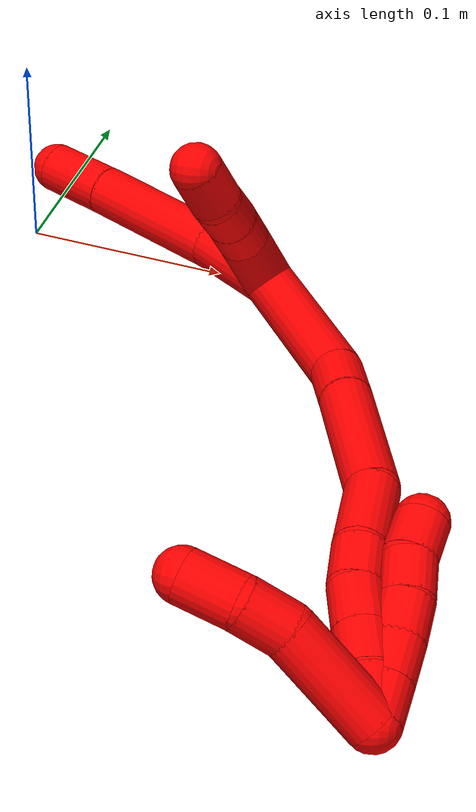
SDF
<sdf version="1.7">
 <world name="default">
  <model name="2">
   <static>0</static>
   <link name="2">
    <collision name="collision-cylinder-e_1_2_8">
     <pose>-0.006658 0.005577 -0.02033 -2.87386 -0.305932 1.7056</pose>
     <geometry><cylinder><radius>0.0125</radius><length>0.044214</length></cylinder></geometry>
     <surface>
      <friction><ode><mu>1.16</mu><mu2>1.16</mu2><slip1>0</slip1><slip2>0</slip2></ode></friction>
      <contact><ode><kp>1e+06</kp><kd>1</kd><max_vel>0</max_vel><min_depth>0.001</min_depth></ode></contact>
     </surface>
    </collision>
    <visual name="visual-cylinder-e_1_2_8">
     <pose>-0.006658 0.005577 -0.02033 -2.87386 -0.305932 1.7056</pose>
     <geometry><cylinder><radius>0.0125</radius><length>0.044214</length></cylinder></geometry>
     <material><ambient>1 0 0 1</ambient></material>
    </visual>
    <collision name="collision-cylinder-e_2_8_9">
     <pose>-0.022228 0.014427 -0.074722 -3.04579 -0.25475 2.42526</pose>
     <geometry><cylinder><radius>0.0125</radius><length>0.070722</length></cylinder></geometry>
     <surface>
      <friction><ode><mu>1.16</mu><mu2>1.16</mu2><slip1>0</slip1><slip2>0</slip2></ode></friction>
      <contact><ode><kp>1e+06</kp><kd>1</kd><max_vel>0</max_vel><min_depth>0.001</min_depth></ode></contact>
     </surface>
    </collision>
    <visual name="visual-cylinder-e_2_8_9">
     <pose>-0.022228 0.014427 -0.074722 -3.04579 -0.25475 2.42526</pose>
     <geometry><cylinder><radius>0.0125</radius><length>0.070722</length></cylinder></geometry>
     <material><ambient>1 0 0 1</ambient></material>
    </visual>
    <collision name="collision-cylinder-e_3_9_6">
     <pose>-0.035071 0.019968 -0.125719 -3.00849 -0.226225 2.08038</pose>
     <geometry><cylinder><radius>0.0125</radius><length>0.035064</length></cylinder></geometry>
     <surface>
      <friction><ode><mu>1.16</mu><mu2>1.16</mu2><slip1>0</slip1><slip2>0</slip2></ode></friction>
      <contact><ode><kp>1e+06</kp><kd>1</kd><max_vel>0</max_vel><min_depth>0.001</min_depth></ode></contact>
     </surface>
    </collision>
    <visual name="visual-cylinder-e_3_9_6">
     <pose>-0.035071 0.019968 -0.125719 -3.00849 -0.226225 2.08038</pose>
     <geometry><cylinder><radius>0.0125</radius><length>0.035064</length></cylinder></geometry>
     <material><ambient>1 0 0 1</ambient></material>
    </visual>
    <collision name="collision-cylinder-e_1_2_10">
     <pose>-0.009463 -0.015685 -0.001353 1.65682 -0.541245 -0.587284</pose>
     <geometry><cylinder><radius>0.0125</radius><length>0.036737</length></cylinder></geometry>
     <surface>
      <friction><ode><mu>1.16</mu><mu2>1.16</mu2><slip1>0</slip1><slip2>0</slip2></ode></friction>
      <contact><ode><kp>1e+06</kp><kd>1</kd><max_vel>0</max_vel><min_depth>0.001</min_depth></ode></contact>
     </surface>
    </collision>
    <visual name="visual-cylinder-e_1_2_10">
     <pose>-0.009463 -0.015685 -0.001353 1.65682 -0.541245 -0.587284</pose>
     <geometry><cylinder><radius>0.0125</radius><length>0.036737</length></cylinder></geometry>
     <material><ambient>1 0 0 1</ambient></material>
    </visual>
    <collision name="collision-cylinder-e_2_10_11">
     <pose>-0.022842 -0.041069 -0.001807 1.4785 -0.382177 -0.34915</pose>
     <geometry><cylinder><radius>0.0125</radius><length>0.020997</length></cylinder></geometry>
     <surface>
      <friction><ode><mu>1.16</mu><mu2>1.16</mu2><slip1>0</slip1><slip2>0</slip2></ode></friction>
      <contact><ode><kp>1e+06</kp><kd>1</kd><max_vel>0</max_vel><min_depth>0.001</min_depth></ode></contact>
     </surface>
    </collision>
    <visual name="visual-cylinder-e_2_10_11">
     <pose>-0.022842 -0.041069 -0.001807 1.4785 -0.382177 -0.34915</pose>
     <geometry><cylinder><radius>0.0125</radius><length>0.020997</length></cylinder></geometry>
     <material><ambient>1 0 0 1</ambient></material>
    </visual>
    <collision name="collision-cylinder-e_3_11_12">
     <pose>-0.030501 -0.060216 -0.000783 1.55738 -0.377202 -0.37229</pose>
     <geometry><cylinder><radius>0.0125</radius><length>0.020326</length></cylinder></geometry>
     <surface>
      <friction><ode><mu>1.16</mu><mu2>1.16</mu2><slip1>0</slip1><slip2>0</slip2></ode></friction>
      <contact><ode><kp>1e+06</kp><kd>1</kd><max_vel>0</max_vel><min_depth>0.001</min_depth></ode></contact>
     </surface>
    </collision>
    <visual name="visual-cylinder-e_3_11_12">
     <pose>-0.030501 -0.060216 -0.000783 1.55738 -0.377202 -0.37229</pose>
     <geometry><cylinder><radius>0.0125</radius><length>0.020326</length></cylinder></geometry>
     <material><ambient>1 0 0 1</ambient></material>
    </visual>
    <collision name="collision-cylinder-e_4_12_5">
     <pose>-0.040606 -0.078396 -0.002559 1.78536 -0.618677 -0.755393</pose>
     <geometry><cylinder><radius>0.0125</radius><length>0.02194</length></cylinder></geometry>
     <surface>
      <friction><ode><mu>1.16</mu><mu2>1.16</mu2><slip1>0</slip1><slip2>0</slip2></ode></friction>
      <contact><ode><kp>1e+06</kp><kd>1</kd><max_vel>0</max_vel><min_depth>0.001</min_depth></ode></contact>
     </surface>
    </collision>
    <visual name="visual-cylinder-e_4_12_5">
     <pose>-0.040606 -0.078396 -0.002559 1.78536 -0.618677 -0.755393</pose>
     <geometry><cylinder><radius>0.0125</radius><length>0.02194</length></cylinder></geometry>
     <material><ambient>1 0 0 1</ambient></material>
    </visual>
    <collision name="collision-cylinder-e_1_2_13">
     <pose>0.017417 -0.021929 0.031578 0.606995 0.425379 0.135057</pose>
     <geometry><cylinder><radius>0.0125</radius><length>0.084414</length></cylinder></geometry>
     <surface>
      <friction><ode><mu>1.16</mu><mu2>1.16</mu2><slip1>0</slip1><slip2>0</slip2></ode></friction>
      <contact><ode><kp>1e+06</kp><kd>1</kd><max_vel>0</max_vel><min_depth>0.001</min_depth></ode></contact>
     </surface>
    </collision>
    <visual name="visual-cylinder-e_1_2_13">
     <pose>0.017417 -0.021929 0.031578 0.606995 0.425379 0.135057</pose>
     <geometry><cylinder><radius>0.0125</radius><length>0.084414</length></cylinder></geometry>
     <material><ambient>1 0 0 1</ambient></material>
    </visual>
    <collision name="collision-cylinder-e_2_13_14">
     <pose>0.040289 -0.052186 0.070268 0.863911 0.462121 0.216062</pose>
     <geometry><cylinder><radius>0.0125</radius><length>0.024469</length></cylinder></geometry>
     <surface>
      <friction><ode><mu>1.16</mu><mu2>1.16</mu2><slip1>0</slip1><slip2>0</slip2></ode></friction>
      <contact><ode><kp>1e+06</kp><kd>1</kd><max_vel>0</max_vel><min_depth>0.001</min_depth></ode></contact>
     </surface>
    </collision>
    <visual name="visual-cylinder-e_2_13_14">
     <pose>0.040289 -0.052186 0.070268 0.863911 0.462121 0.216062</pose>
     <geometry><cylinder><radius>0.0125</radius><length>0.024469</length></cylinder></geometry>
     <material><ambient>1 0 0 1</ambient></material>
    </visual>
    <collision name="collision-cylinder-e_3_14_15">
     <pose>0.062527 -0.082372 0.096672 0.847709 0.522328 0.240026</pose>
     <geometry><cylinder><radius>0.0125</radius><length>0.067281</length></cylinder></geometry>
     <surface>
      <friction><ode><mu>1.16</mu><mu2>1.16</mu2><slip1>0</slip1><slip2>0</slip2></ode></friction>
      <contact><ode><kp>1e+06</kp><kd>1</kd><max_vel>0</max_vel><min_depth>0.001</min_depth></ode></contact>
     </surface>
    </collision>
    <visual name="visual-cylinder-e_3_14_15">
     <pose>0.062527 -0.082372 0.096672 0.847709 0.522328 0.240026</pose>
     <geometry><cylinder><radius>0.0125</radius><length>0.067281</length></cylinder></geometry>
     <material><ambient>1 0 0 1</ambient></material>
    </visual>
    <collision name="collision-cylinder-e_4_15_16">
     <pose>0.090451 -0.11846 0.121332 1.21003 0.632241 0.444892</pose>
     <geometry><cylinder><radius>0.0125</radius><length>0.037703</length></cylinder></geometry>
     <surface>
      <friction><ode><mu>1.16</mu><mu2>1.16</mu2><slip1>0</slip1><slip2>0</slip2></ode></friction>
      <contact><ode><kp>1e+06</kp><kd>1</kd><max_vel>0</max_vel><min_depth>0.001</min_depth></ode></contact>
     </surface>
    </collision>
    <visual name="visual-cylinder-e_4_15_16">
     <pose>0.090451 -0.11846 0.121332 1.21003 0.632241 0.444892</pose>
     <geometry><cylinder><radius>0.0125</radius><length>0.037703</length></cylinder></geometry>
     <material><ambient>1 0 0 1</ambient></material>
    </visual>
    <collision name="collision-cylinder-e_5_16_17">
     <pose>0.108993 -0.139153 0.129767 1.12778 0.802406 0.524184</pose>
     <geometry><cylinder><radius>0.0125</radius><length>0.020589</length></cylinder></geometry>
     <surface>
      <friction><ode><mu>1.16</mu><mu2>1.16</mu2><slip1>0</slip1><slip2>0</slip2></ode></friction>
      <contact><ode><kp>1e+06</kp><kd>1</kd><max_vel>0</max_vel><min_depth>0.001</min_depth></ode></contact>
     </surface>
    </collision>
    <visual name="visual-cylinder-e_5_16_17">
     <pose>0.108993 -0.139153 0.129767 1.12778 0.802406 0.524184</pose>
     <geometry><cylinder><radius>0.0125</radius><length>0.020589</length></cylinder></geometry>
     <material><ambient>1 0 0 1</ambient></material>
    </visual>
    <collision name="collision-cylinder-e_6_17_18">
     <pose>0.124211 -0.151295 0.138086 0.824399 0.790639 0.360946</pose>
     <geometry><cylinder><radius>0.0125</radius><length>0.021992</length></cylinder></geometry>
     <surface>
      <friction><ode><mu>1.16</mu><mu2>1.16</mu2><slip1>0</slip1><slip2>0</slip2></ode></friction>
      <contact><ode><kp>1e+06</kp><kd>1</kd><max_vel>0</max_vel><min_depth>0.001</min_depth></ode></contact>
     </surface>
    </collision>
    <visual name="visual-cylinder-e_6_17_18">
     <pose>0.124211 -0.151295 0.138086 0.824399 0.790639 0.360946</pose>
     <geometry><cylinder><radius>0.0125</radius><length>0.021992</length></cylinder></geometry>
     <material><ambient>1 0 0 1</ambient></material>
    </visual>
    <collision name="collision-cylinder-e_7_18_19">
     <pose>0.139274 -0.162282 0.148389 0.810295 0.779837 0.348917</pose>
     <geometry><cylinder><radius>0.0125</radius><length>0.020612</length></cylinder></geometry>
     <surface>
      <friction><ode><mu>1.16</mu><mu2>1.16</mu2><slip1>0</slip1><slip2>0</slip2></ode></friction>
      <contact><ode><kp>1e+06</kp><kd>1</kd><max_vel>0</max_vel><min_depth>0.001</min_depth></ode></contact>
     </surface>
    </collision>
    <visual name="visual-cylinder-e_7_18_19">
     <pose>0.139274 -0.162282 0.148389 0.810295 0.779837 0.348917</pose>
     <geometry><cylinder><radius>0.0125</radius><length>0.020612</length></cylinder></geometry>
     <material><ambient>1 0 0 1</ambient></material>
    </visual>
    <collision name="collision-cylinder-e_8_19_1">
     <pose>0.155409 -0.172711 0.158572 0.784237 0.886587 0.387767</pose>
     <geometry><cylinder><radius>0.0125</radius><length>0.02294</length></cylinder></geometry>
     <surface>
      <friction><ode><mu>1.16</mu><mu2>1.16</mu2><slip1>0</slip1><slip2>0</slip2></ode></friction>
      <contact><ode><kp>1e+06</kp><kd>1</kd><max_vel>0</max_vel><min_depth>0.001</min_depth></ode></contact>
     </surface>
    </collision>
    <visual name="visual-cylinder-e_8_19_1">
     <pose>0.155409 -0.172711 0.158572 0.784237 0.886587 0.387767</pose>
     <geometry><cylinder><radius>0.0125</radius><length>0.02294</length></cylinder></geometry>
     <material><ambient>1 0 0 1</ambient></material>
    </visual>
    <collision name="collision-cylinder-e_1_1_20">
     <pose>0.156638 -0.171544 0.162368 -1.78031 -0.872595 1.04492</pose>
     <geometry><cylinder><radius>0.0125</radius><length>0.02</length></cylinder></geometry>
     <surface>
      <friction><ode><mu>1.16</mu><mu2>1.16</mu2><slip1>0</slip1><slip2>0</slip2></ode></friction>
      <contact><ode><kp>1e+06</kp><kd>1</kd><max_vel>0</max_vel><min_depth>0.001</min_depth></ode></contact>
     </surface>
    </collision>
    <visual name="visual-cylinder-e_1_1_20">
     <pose>0.156638 -0.171544 0.162368 -1.78031 -0.872595 1.04492</pose>
     <geometry><cylinder><radius>0.0125</radius><length>0.02</length></cylinder></geometry>
     <material><ambient>1 0 0 1</ambient></material>
    </visual>
    <collision name="collision-cylinder-e_2_20_21">
     <pose>0.141288 -0.159018 0.159634 -1.79106 -0.877253 1.05975</pose>
     <geometry><cylinder><radius>0.0125</radius><length>0.02</length></cylinder></geometry>
     <surface>
      <friction><ode><mu>1.16</mu><mu2>1.16</mu2><slip1>0</slip1><slip2>0</slip2></ode></friction>
      <contact><ode><kp>1e+06</kp><kd>1</kd><max_vel>0</max_vel><min_depth>0.001</min_depth></ode></contact>
     </surface>
    </collision>
    <visual name="visual-cylinder-e_2_20_21">
     <pose>0.141288 -0.159018 0.159634 -1.79106 -0.877253 1.05975</pose>
     <geometry><cylinder><radius>0.0125</radius><length>0.02</length></cylinder></geometry>
     <material><ambient>1 0 0 1</ambient></material>
    </visual>
    <collision name="collision-cylinder-e_3_21_22">
     <pose>0.125465 -0.147199 0.156593 -1.85732 -0.949844 1.2046</pose>
     <geometry><cylinder><radius>0.0125</radius><length>0.02</length></cylinder></geometry>
     <surface>
      <friction><ode><mu>1.16</mu><mu2>1.16</mu2><slip1>0</slip1><slip2>0</slip2></ode></friction>
      <contact><ode><kp>1e+06</kp><kd>1</kd><max_vel>0</max_vel><min_depth>0.001</min_depth></ode></contact>
     </surface>
    </collision>
    <visual name="visual-cylinder-e_3_21_22">
     <pose>0.125465 -0.147199 0.156593 -1.85732 -0.949844 1.2046</pose>
     <geometry><cylinder><radius>0.0125</radius><length>0.02</length></cylinder></geometry>
     <material><ambient>1 0 0 1</ambient></material>
    </visual>
    <collision name="collision-cylinder-e_4_22_23">
     <pose>0.109464 -0.136275 0.151856 -2.09547 -0.905533 1.40159</pose>
     <geometry><cylinder><radius>0.0125</radius><length>0.02</length></cylinder></geometry>
     <surface>
      <friction><ode><mu>1.16</mu><mu2>1.16</mu2><slip1>0</slip1><slip2>0</slip2></ode></friction>
      <contact><ode><kp>1e+06</kp><kd>1</kd><max_vel>0</max_vel><min_depth>0.001</min_depth></ode></contact>
     </surface>
    </collision>
    <visual name="visual-cylinder-e_4_22_23">
     <pose>0.109464 -0.136275 0.151856 -2.09547 -0.905533 1.40159</pose>
     <geometry><cylinder><radius>0.0125</radius><length>0.02</length></cylinder></geometry>
     <material><ambient>1 0 0 1</ambient></material>
    </visual>
    <collision name="collision-cylinder-e_5_23_4">
     <pose>0.094264 -0.124242 0.147554 -1.74967 -0.823088 0.962908</pose>
     <geometry><cylinder><radius>0.0125</radius><length>0.02</length></cylinder></geometry>
     <surface>
      <friction><ode><mu>1.16</mu><mu2>1.16</mu2><slip1>0</slip1><slip2>0</slip2></ode></friction>
      <contact><ode><kp>1e+06</kp><kd>1</kd><max_vel>0</max_vel><min_depth>0.001</min_depth></ode></contact>
     </surface>
    </collision>
    <visual name="visual-cylinder-e_5_23_4">
     <pose>0.094264 -0.124242 0.147554 -1.74967 -0.823088 0.962908</pose>
     <geometry><cylinder><radius>0.0125</radius><length>0.02</length></cylinder></geometry>
     <material><ambient>1 0 0 1</ambient></material>
    </visual>
    <collision name="collision-cylinder-e_1_1_24">
     <pose>0.148205 -0.188476 0.146653 2.58355 -0.675109 -1.77245</pose>
     <geometry><cylinder><radius>0.0125</radius><length>0.0515</length></cylinder></geometry>
     <surface>
      <friction><ode><mu>1.16</mu><mu2>1.16</mu2><slip1>0</slip1><slip2>0</slip2></ode></friction>
      <contact><ode><kp>1e+06</kp><kd>1</kd><max_vel>0</max_vel><min_depth>0.001</min_depth></ode></contact>
     </surface>
    </collision>
    <visual name="visual-cylinder-e_1_1_24">
     <pose>0.148205 -0.188476 0.146653 2.58355 -0.675109 -1.77245</pose>
     <geometry><cylinder><radius>0.0125</radius><length>0.0515</length></cylinder></geometry>
     <material><ambient>1 0 0 1</ambient></material>
    </visual>
    <collision name="collision-cylinder-e_2_24_25">
     <pose>0.128012 -0.204712 0.120726 2.57932 -0.372532 -1.15635</pose>
     <geometry><cylinder><radius>0.0125</radius><length>0.022525</length></cylinder></geometry>
     <surface>
      <friction><ode><mu>1.16</mu><mu2>1.16</mu2><slip1>0</slip1><slip2>0</slip2></ode></friction>
      <contact><ode><kp>1e+06</kp><kd>1</kd><max_vel>0</max_vel><min_depth>0.001</min_depth></ode></contact>
     </surface>
    </collision>
    <visual name="visual-cylinder-e_2_24_25">
     <pose>0.128012 -0.204712 0.120726 2.57932 -0.372532 -1.15635</pose>
     <geometry><cylinder><radius>0.0125</radius><length>0.022525</length></cylinder></geometry>
     <material><ambient>1 0 0 1</ambient></material>
    </visual>
    <collision name="collision-cylinder-e_3_25_3">
     <pose>0.120776 -0.213198 0.099585 2.90995 -0.24394 -1.62298</pose>
     <geometry><cylinder><radius>0.0125</radius><length>0.025976</length></cylinder></geometry>
     <surface>
      <friction><ode><mu>1.16</mu><mu2>1.16</mu2><slip1>0</slip1><slip2>0</slip2></ode></friction>
      <contact><ode><kp>1e+06</kp><kd>1</kd><max_vel>0</max_vel><min_depth>0.001</min_depth></ode></contact>
     </surface>
    </collision>
    <visual name="visual-cylinder-e_3_25_3">
     <pose>0.120776 -0.213198 0.099585 2.90995 -0.24394 -1.62298</pose>
     <geometry><cylinder><radius>0.0125</radius><length>0.025976</length></cylinder></geometry>
     <material><ambient>1 0 0 1</ambient></material>
    </visual>
    <collision name="collision-sphere-3">
     <pose>0.117639 -0.216091 0.087318 0 -0 0</pose>
     <geometry><sphere><radius>0.0125</radius></sphere></geometry>
     <surface>
      <friction><ode><mu>1.16</mu><mu2>1.16</mu2><slip1>0</slip1><slip2>0</slip2></ode></friction>
      <contact><ode><kp>1e+06</kp><kd>1</kd><max_vel>0</max_vel><min_depth>0.001</min_depth></ode></contact>
     </surface>
    </collision>
    <visual name="visual-sphere-3">
     <pose>0.117639 -0.216091 0.087318 0 -0 0</pose>
     <geometry><sphere><radius>0.0125</radius></sphere></geometry>
     <material><ambient>1 0 0 1</ambient></material>
    </visual>
    <collision name="collision-sphere-25">
     <pose>0.123913 -0.210305 0.111851 0 -0 0</pose>
     <geometry><sphere><radius>0.0125</radius></sphere></geometry>
     <surface>
      <friction><ode><mu>1.16</mu><mu2>1.16</mu2><slip1>0</slip1><slip2>0</slip2></ode></friction>
      <contact><ode><kp>1e+06</kp><kd>1</kd><max_vel>0</max_vel><min_depth>0.001</min_depth></ode></contact>
     </surface>
    </collision>
    <visual name="visual-sphere-25">
     <pose>0.123913 -0.210305 0.111851 0 -0 0</pose>
     <geometry><sphere><radius>0.0125</radius></sphere></geometry>
     <material><ambient>1 0 0 1</ambient></material>
    </visual>
    <collision name="collision-sphere-24">
     <pose>0.132112 -0.19912 0.129601 0 -0 0</pose>
     <geometry><sphere><radius>0.0125</radius></sphere></geometry>
     <surface>
      <friction><ode><mu>1.16</mu><mu2>1.16</mu2><slip1>0</slip1><slip2>0</slip2></ode></friction>
      <contact><ode><kp>1e+06</kp><kd>1</kd><max_vel>0</max_vel><min_depth>0.001</min_depth></ode></contact>
     </surface>
    </collision>
    <visual name="visual-sphere-24">
     <pose>0.132112 -0.19912 0.129601 0 -0 0</pose>
     <geometry><sphere><radius>0.0125</radius></sphere></geometry>
     <material><ambient>1 0 0 1</ambient></material>
    </visual>
    <collision name="collision-sphere-4">
     <pose>0.086932 -0.117551 0.146345 0 -0 0</pose>
     <geometry><sphere><radius>0.0125</radius></sphere></geometry>
     <surface>
      <friction><ode><mu>1.16</mu><mu2>1.16</mu2><slip1>0</slip1><slip2>0</slip2></ode></friction>
      <contact><ode><kp>1e+06</kp><kd>1</kd><max_vel>0</max_vel><min_depth>0.001</min_depth></ode></contact>
     </surface>
    </collision>
    <visual name="visual-sphere-4">
     <pose>0.086932 -0.117551 0.146345 0 -0 0</pose>
     <geometry><sphere><radius>0.0125</radius></sphere></geometry>
     <material><ambient>1 0 0 1</ambient></material>
    </visual>
    <collision name="collision-sphere-23">
     <pose>0.101597 -0.130933 0.148764 0 -0 0</pose>
     <geometry><sphere><radius>0.0125</radius></sphere></geometry>
     <surface>
      <friction><ode><mu>1.16</mu><mu2>1.16</mu2><slip1>0</slip1><slip2>0</slip2></ode></friction>
      <contact><ode><kp>1e+06</kp><kd>1</kd><max_vel>0</max_vel><min_depth>0.001</min_depth></ode></contact>
     </surface>
    </collision>
    <visual name="visual-sphere-23">
     <pose>0.101597 -0.130933 0.148764 0 -0 0</pose>
     <geometry><sphere><radius>0.0125</radius></sphere></geometry>
     <material><ambient>1 0 0 1</ambient></material>
    </visual>
    <collision name="collision-sphere-22">
     <pose>0.117332 -0.141618 0.154948 0 -0 0</pose>
     <geometry><sphere><radius>0.0125</radius></sphere></geometry>
     <surface>
      <friction><ode><mu>1.16</mu><mu2>1.16</mu2><slip1>0</slip1><slip2>0</slip2></ode></friction>
      <contact><ode><kp>1e+06</kp><kd>1</kd><max_vel>0</max_vel><min_depth>0.001</min_depth></ode></contact>
     </surface>
    </collision>
    <visual name="visual-sphere-22">
     <pose>0.117332 -0.141618 0.154948 0 -0 0</pose>
     <geometry><sphere><radius>0.0125</radius></sphere></geometry>
     <material><ambient>1 0 0 1</ambient></material>
    </visual>
    <collision name="collision-sphere-21">
     <pose>0.133598 -0.15278 0.158237 0 -0 0</pose>
     <geometry><sphere><radius>0.0125</radius></sphere></geometry>
     <surface>
      <friction><ode><mu>1.16</mu><mu2>1.16</mu2><slip1>0</slip1><slip2>0</slip2></ode></friction>
      <contact><ode><kp>1e+06</kp><kd>1</kd><max_vel>0</max_vel><min_depth>0.001</min_depth></ode></contact>
     </surface>
    </collision>
    <visual name="visual-sphere-21">
     <pose>0.133598 -0.15278 0.158237 0 -0 0</pose>
     <geometry><sphere><radius>0.0125</radius></sphere></geometry>
     <material><ambient>1 0 0 1</ambient></material>
    </visual>
    <collision name="collision-sphere-20">
     <pose>0.148978 -0.165256 0.161031 0 -0 0</pose>
     <geometry><sphere><radius>0.0125</radius></sphere></geometry>
     <surface>
      <friction><ode><mu>1.16</mu><mu2>1.16</mu2><slip1>0</slip1><slip2>0</slip2></ode></friction>
      <contact><ode><kp>1e+06</kp><kd>1</kd><max_vel>0</max_vel><min_depth>0.001</min_depth></ode></contact>
     </surface>
    </collision>
    <visual name="visual-sphere-20">
     <pose>0.148978 -0.165256 0.161031 0 -0 0</pose>
     <geometry><sphere><radius>0.0125</radius></sphere></geometry>
     <material><ambient>1 0 0 1</ambient></material>
    </visual>
    <collision name="collision-sphere-11">
     <pose>-0.026758 -0.050769 -0.00091 0 -0 0</pose>
     <geometry><sphere><radius>0.0125</radius></sphere></geometry>
     <surface>
      <friction><ode><mu>1.16</mu><mu2>1.16</mu2><slip1>0</slip1><slip2>0</slip2></ode></friction>
      <contact><ode><kp>1e+06</kp><kd>1</kd><max_vel>0</max_vel><min_depth>0.001</min_depth></ode></contact>
     </surface>
    </collision>
    <visual name="visual-sphere-11">
     <pose>-0.026758 -0.050769 -0.00091 0 -0 0</pose>
     <geometry><sphere><radius>0.0125</radius></sphere></geometry>
     <material><ambient>1 0 0 1</ambient></material>
    </visual>
    <collision name="collision-sphere-10">
     <pose>-0.018927 -0.03137 -0.002705 0 -0 0</pose>
     <geometry><sphere><radius>0.0125</radius></sphere></geometry>
     <surface>
      <friction><ode><mu>1.16</mu><mu2>1.16</mu2><slip1>0</slip1><slip2>0</slip2></ode></friction>
      <contact><ode><kp>1e+06</kp><kd>1</kd><max_vel>0</max_vel><min_depth>0.001</min_depth></ode></contact>
     </surface>
    </collision>
    <visual name="visual-sphere-10">
     <pose>-0.018927 -0.03137 -0.002705 0 -0 0</pose>
     <geometry><sphere><radius>0.0125</radius></sphere></geometry>
     <material><ambient>1 0 0 1</ambient></material>
    </visual>
    <collision name="collision-sphere-6">
     <pose>-0.039004 0.022235 -0.142653 0 -0 0</pose>
     <geometry><sphere><radius>0.0125</radius></sphere></geometry>
     <surface>
      <friction><ode><mu>1.16</mu><mu2>1.16</mu2><slip1>0</slip1><slip2>0</slip2></ode></friction>
      <contact><ode><kp>1e+06</kp><kd>1</kd><max_vel>0</max_vel><min_depth>0.001</min_depth></ode></contact>
     </surface>
    </collision>
    <visual name="visual-sphere-6">
     <pose>-0.039004 0.022235 -0.142653 0 -0 0</pose>
     <geometry><sphere><radius>0.0125</radius></sphere></geometry>
     <material><ambient>1 0 0 1</ambient></material>
    </visual>
    <collision name="collision-sphere-9">
     <pose>-0.031139 0.0177 -0.108785 0 -0 0</pose>
     <geometry><sphere><radius>0.0125</radius></sphere></geometry>
     <surface>
      <friction><ode><mu>1.16</mu><mu2>1.16</mu2><slip1>0</slip1><slip2>0</slip2></ode></friction>
      <contact><ode><kp>1e+06</kp><kd>1</kd><max_vel>0</max_vel><min_depth>0.001</min_depth></ode></contact>
     </surface>
    </collision>
    <visual name="visual-sphere-9">
     <pose>-0.031139 0.0177 -0.108785 0 -0 0</pose>
     <geometry><sphere><radius>0.0125</radius></sphere></geometry>
     <material><ambient>1 0 0 1</ambient></material>
    </visual>
    <collision name="collision-sphere-2">
     <geometry><sphere><radius>0.0125</radius></sphere></geometry>
     <surface>
      <friction><ode><mu>1.16</mu><mu2>1.16</mu2><slip1>0</slip1><slip2>0</slip2></ode></friction>
      <contact><ode><kp>1e+06</kp><kd>1</kd><max_vel>0</max_vel><min_depth>0.001</min_depth></ode></contact>
     </surface>
    </collision>
    <visual name="visual-sphere-2">
     <geometry><sphere><radius>0.0125</radius></sphere></geometry>
     <material><ambient>1 0 0 1</ambient></material>
    </visual>
    <collision name="collision-sphere-19">
     <pose>0.146521 -0.167591 0.15344 0 -0 0</pose>
     <geometry><sphere><radius>0.0125</radius></sphere></geometry>
     <surface>
      <friction><ode><mu>1.16</mu><mu2>1.16</mu2><slip1>0</slip1><slip2>0</slip2></ode></friction>
      <contact><ode><kp>1e+06</kp><kd>1</kd><max_vel>0</max_vel><min_depth>0.001</min_depth></ode></contact>
     </surface>
    </collision>
    <visual name="visual-sphere-19">
     <pose>0.146521 -0.167591 0.15344 0 -0 0</pose>
     <geometry><sphere><radius>0.0125</radius></sphere></geometry>
     <material><ambient>1 0 0 1</ambient></material>
    </visual>
    <collision name="collision-sphere-8">
     <pose>-0.013317 0.011154 -0.040659 0 -0 0</pose>
     <geometry><sphere><radius>0.0125</radius></sphere></geometry>
     <surface>
      <friction><ode><mu>1.16</mu><mu2>1.16</mu2><slip1>0</slip1><slip2>0</slip2></ode></friction>
      <contact><ode><kp>1e+06</kp><kd>1</kd><max_vel>0</max_vel><min_depth>0.001</min_depth></ode></contact>
     </surface>
    </collision>
    <visual name="visual-sphere-8">
     <pose>-0.013317 0.011154 -0.040659 0 -0 0</pose>
     <geometry><sphere><radius>0.0125</radius></sphere></geometry>
     <material><ambient>1 0 0 1</ambient></material>
    </visual>
    <collision name="collision-sphere-12">
     <pose>-0.034244 -0.069664 -0.000656 0 -0 0</pose>
     <geometry><sphere><radius>0.0125</radius></sphere></geometry>
     <surface>
      <friction><ode><mu>1.16</mu><mu2>1.16</mu2><slip1>0</slip1><slip2>0</slip2></ode></friction>
      <contact><ode><kp>1e+06</kp><kd>1</kd><max_vel>0</max_vel><min_depth>0.001</min_depth></ode></contact>
     </surface>
    </collision>
    <visual name="visual-sphere-12">
     <pose>-0.034244 -0.069664 -0.000656 0 -0 0</pose>
     <geometry><sphere><radius>0.0125</radius></sphere></geometry>
     <material><ambient>1 0 0 1</ambient></material>
    </visual>
    <collision name="collision-sphere-5">
     <pose>-0.046969 -0.087128 -0.004462 0 -0 0</pose>
     <geometry><sphere><radius>0.0125</radius></sphere></geometry>
     <surface>
      <friction><ode><mu>1.16</mu><mu2>1.16</mu2><slip1>0</slip1><slip2>0</slip2></ode></friction>
      <contact><ode><kp>1e+06</kp><kd>1</kd><max_vel>0</max_vel><min_depth>0.001</min_depth></ode></contact>
     </surface>
    </collision>
    <visual name="visual-sphere-5">
     <pose>-0.046969 -0.087128 -0.004462 0 -0 0</pose>
     <geometry><sphere><radius>0.0125</radius></sphere></geometry>
     <material><ambient>1 0 0 1</ambient></material>
    </visual>
    <collision name="collision-sphere-13">
     <pose>0.034835 -0.043859 0.063156 0 -0 0</pose>
     <geometry><sphere><radius>0.0125</radius></sphere></geometry>
     <surface>
      <friction><ode><mu>1.16</mu><mu2>1.16</mu2><slip1>0</slip1><slip2>0</slip2></ode></friction>
      <contact><ode><kp>1e+06</kp><kd>1</kd><max_vel>0</max_vel><min_depth>0.001</min_depth></ode></contact>
     </surface>
    </collision>
    <visual name="visual-sphere-13">
     <pose>0.034835 -0.043859 0.063156 0 -0 0</pose>
     <geometry><sphere><radius>0.0125</radius></sphere></geometry>
     <material><ambient>1 0 0 1</ambient></material>
    </visual>
    <collision name="collision-sphere-14">
     <pose>0.045744 -0.060513 0.07738 0 -0 0</pose>
     <geometry><sphere><radius>0.0125</radius></sphere></geometry>
     <surface>
      <friction><ode><mu>1.16</mu><mu2>1.16</mu2><slip1>0</slip1><slip2>0</slip2></ode></friction>
      <contact><ode><kp>1e+06</kp><kd>1</kd><max_vel>0</max_vel><min_depth>0.001</min_depth></ode></contact>
     </surface>
    </collision>
    <visual name="visual-sphere-14">
     <pose>0.045744 -0.060513 0.07738 0 -0 0</pose>
     <geometry><sphere><radius>0.0125</radius></sphere></geometry>
     <material><ambient>1 0 0 1</ambient></material>
    </visual>
    <collision name="collision-sphere-15">
     <pose>0.079311 -0.104232 0.115964 0 -0 0</pose>
     <geometry><sphere><radius>0.0125</radius></sphere></geometry>
     <surface>
      <friction><ode><mu>1.16</mu><mu2>1.16</mu2><slip1>0</slip1><slip2>0</slip2></ode></friction>
      <contact><ode><kp>1e+06</kp><kd>1</kd><max_vel>0</max_vel><min_depth>0.001</min_depth></ode></contact>
     </surface>
    </collision>
    <visual name="visual-sphere-15">
     <pose>0.079311 -0.104232 0.115964 0 -0 0</pose>
     <geometry><sphere><radius>0.0125</radius></sphere></geometry>
     <material><ambient>1 0 0 1</ambient></material>
    </visual>
    <collision name="collision-sphere-16">
     <pose>0.101591 -0.132689 0.126701 0 -0 0</pose>
     <geometry><sphere><radius>0.0125</radius></sphere></geometry>
     <surface>
      <friction><ode><mu>1.16</mu><mu2>1.16</mu2><slip1>0</slip1><slip2>0</slip2></ode></friction>
      <contact><ode><kp>1e+06</kp><kd>1</kd><max_vel>0</max_vel><min_depth>0.001</min_depth></ode></contact>
     </surface>
    </collision>
    <visual name="visual-sphere-16">
     <pose>0.101591 -0.132689 0.126701 0 -0 0</pose>
     <geometry><sphere><radius>0.0125</radius></sphere></geometry>
     <material><ambient>1 0 0 1</ambient></material>
    </visual>
    <collision name="collision-sphere-17">
     <pose>0.116395 -0.145616 0.132834 0 -0 0</pose>
     <geometry><sphere><radius>0.0125</radius></sphere></geometry>
     <surface>
      <friction><ode><mu>1.16</mu><mu2>1.16</mu2><slip1>0</slip1><slip2>0</slip2></ode></friction>
      <contact><ode><kp>1e+06</kp><kd>1</kd><max_vel>0</max_vel><min_depth>0.001</min_depth></ode></contact>
     </surface>
    </collision>
    <visual name="visual-sphere-17">
     <pose>0.116395 -0.145616 0.132834 0 -0 0</pose>
     <geometry><sphere><radius>0.0125</radius></sphere></geometry>
     <material><ambient>1 0 0 1</ambient></material>
    </visual>
    <collision name="collision-sphere-18">
     <pose>0.132027 -0.156973 0.143338 0 -0 0</pose>
     <geometry><sphere><radius>0.0125</radius></sphere></geometry>
     <surface>
      <friction><ode><mu>1.16</mu><mu2>1.16</mu2><slip1>0</slip1><slip2>0</slip2></ode></friction>
      <contact><ode><kp>1e+06</kp><kd>1</kd><max_vel>0</max_vel><min_depth>0.001</min_depth></ode></contact>
     </surface>
    </collision>
    <visual name="visual-sphere-18">
     <pose>0.132027 -0.156973 0.143338 0 -0 0</pose>
     <geometry><sphere><radius>0.0125</radius></sphere></geometry>
     <material><ambient>1 0 0 1</ambient></material>
    </visual>
    <collision name="collision-sphere-1">
     <pose>0.164298 -0.177832 0.163705 0 -0 0</pose>
     <geometry><sphere><radius>0.0125</radius></sphere></geometry>
     <surface>
      <friction><ode><mu>1.16</mu><mu2>1.16</mu2><slip1>0</slip1><slip2>0</slip2></ode></friction>
      <contact><ode><kp>1e+06</kp><kd>1</kd><max_vel>0</max_vel><min_depth>0.001</min_depth></ode></contact>
     </surface>
    </collision>
    <visual name="visual-sphere-1">
     <pose>0.164298 -0.177832 0.163705 0 -0 0</pose>
     <geometry><sphere><radius>0.0125</radius></sphere></geometry>
     <material><ambient>1 0 0 1</ambient></material>
    </visual>
    <inertial>
     <pose>0.056328 -0.084896 0.060715 0 -0 0</pose>
     <mass>0.75</mass>
     <inertia><ixx>9.5e-05</ixx><ixy>0</ixy><ixz>0</ixz><iyy>0.000136</iyy><iyz>0</iyz><izz>4.2e-05</izz></inertia>
    </inertial>
   </link>
   <pose>0.131911 -0.015509 0.01446 -1.32401 0.919667 -1.49527</pose>
  </model>
 </world>
</sdf>
